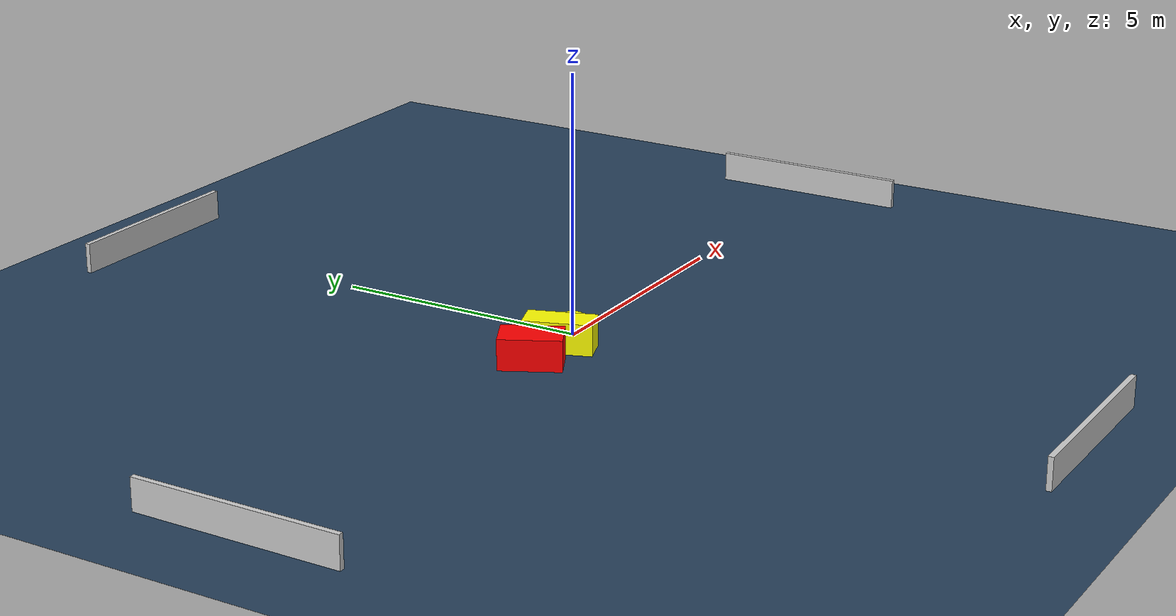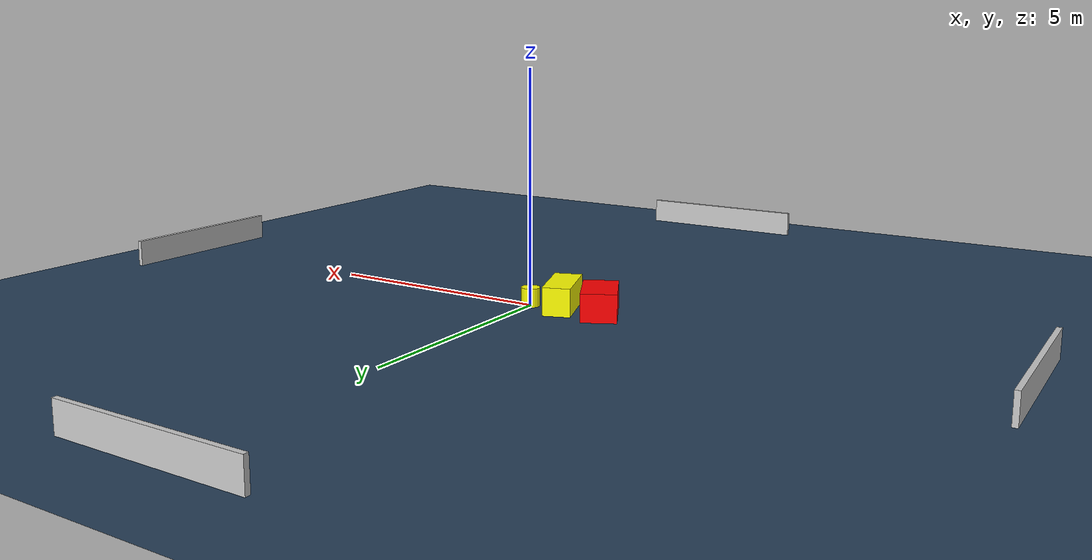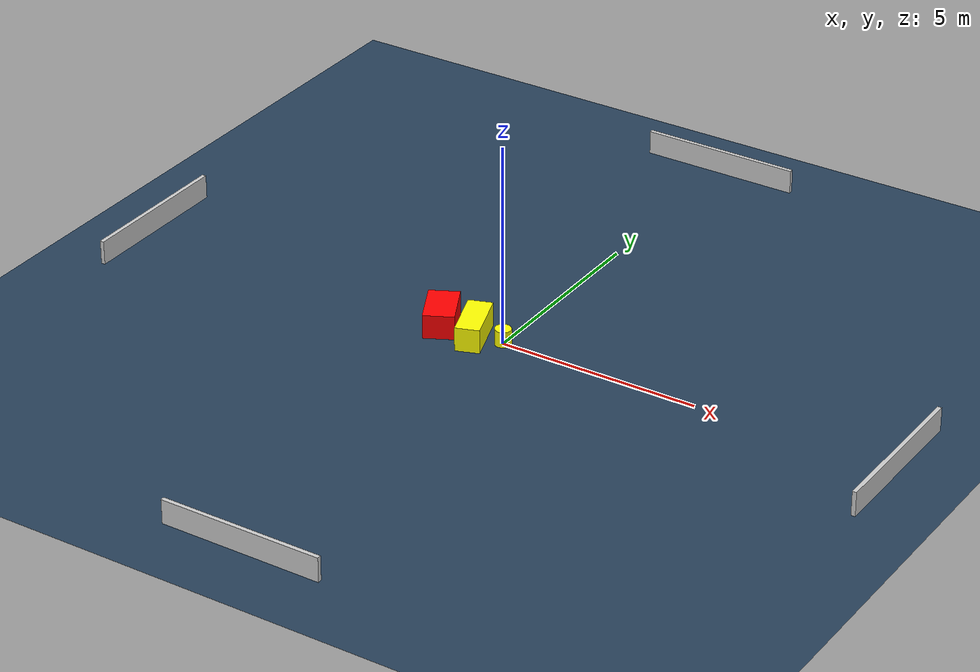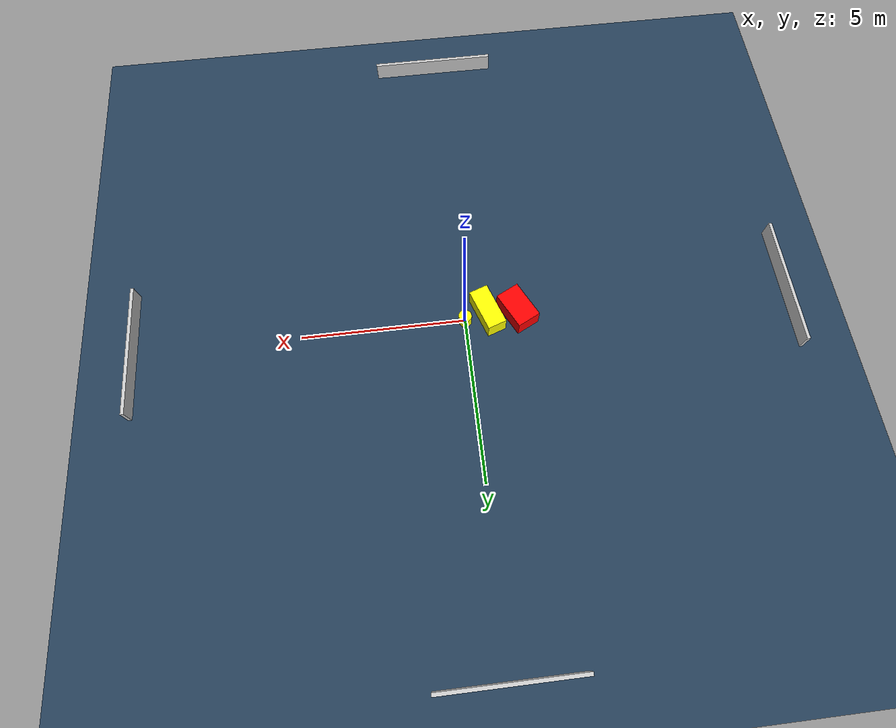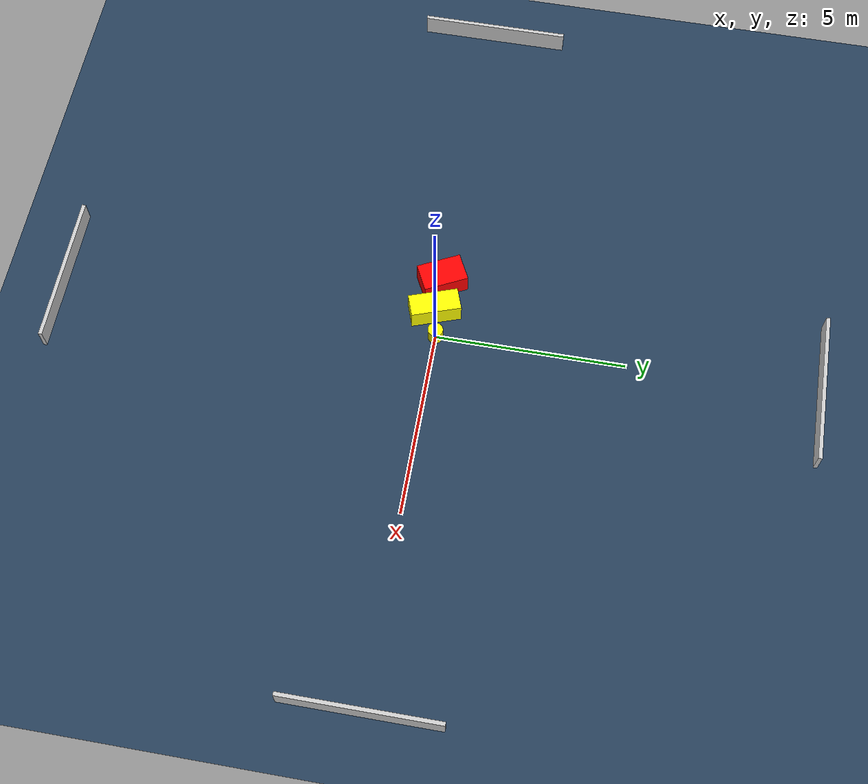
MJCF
<?xml version="1.0" ?>
<mujoco model="generated_environment">
  <option timestep="0.01" integrator="RK4" cone="elliptic"/>
  <default>
    <geom density="1"/>
  </default>
  <asset>
    <texture builtin="gradient" height="3072" name="skybox" rgb1="0.3 0.5 0.7" rgb2="0 0 0" type="skybox" width="512"/>
    <texture builtin="checker" height="300" name="groundplane" rgb1="0.2 0.3 0.4" rgb2="0.1 0.2 0.3" type="2d" width="300"/>
    <material name="groundplane" reflectance="0.2" texrepeat="5 5" texture="groundplane"/>
  </asset>
  <worldbody>
    <light dir="0 0 -1" directional="true" pos="0 0 1.5"/>
    <geom condim="3" friction="0.5 0.005 0.001" material="groundplane" name="floor" pos="0 0 0" size="0 0 0.05" type="plane"/>
    <body name="walls">
      <geom name="wall_1" condim="4" pos="-10.0 0.0 0.3" rgba="0.800000011920929 0.800000011920929 0.800000011920929 1.0" size="0.05 2.0 0.3" type="box"/>
      <geom name="wall_2" condim="4" pos="10.0 0.0 0.3" rgba="0.800000011920929 0.800000011920929 0.800000011920929 1.0" size="0.05 2.0 0.3" type="box"/>
      <geom name="wall_3" condim="4" pos="0.0 -10.0 0.3" rgba="0.800000011920929 0.800000011920929 0.800000011920929 1.0" size="2.0 0.05 0.3" type="box"/>
      <geom name="wall_4" condim="4" pos="0.0 10.0 0.3" rgba="0.800000011920929 0.800000011920929 0.800000011920929 1.0" size="2.0 0.05 0.3" type="box"/>
    </body>
    <body name="robot">
      <joint name="joint_x" type="slide" pos="0 0 0" axis="1 0 0"/>
      <joint name="joint_y" type="slide" pos="0 0 0" axis="0 1 0"/>
      <geom name="robot" type="cylinder" pos="0.0 0.0 0.2" size="0.2 0.2 0.0" mass="5.0" friction="1.0 0.005 0.0001" condim="4" rgba="1.0 1.0 0.0 1.0"/>
    </body>
    <body name="obstacle_1_movable">
      <geom name="obstacle_1_movable" condim="4" pos="-0.6993281808548442 -0.14230246292085566 0.3" euler="0 0 289.37104533613604" friction="0.0 0.005 0.001" rgba="1.0 1.0 0.0 1.0" size="0.6577890486202691 0.2963276429223227 0.3" type="box" mass="0.1"/>
      <joint type="free"/>
    </body>
    <body name="obstacle_2_static">
      <geom name="obstacle_2_static" condim="4" pos="-1.618284246558366 -0.09723803310378723 0.3" euler="0 0 116.80052750658069" friction="0.0 0.005 0.001" rgba="1.0 0.0 0.0 1.0" size="0.5920267684612862 0.3740157045476191 0.3" type="box"/>
    </body>
  </worldbody>
  <actuator>
    <motor name="actuator_x" joint="joint_x" gear="1" ctrlrange="-1 1"/>
    <motor name="actuator_y" joint="joint_y" gear="1" ctrlrange="-1 1"/>
  </actuator>
</mujoco>
